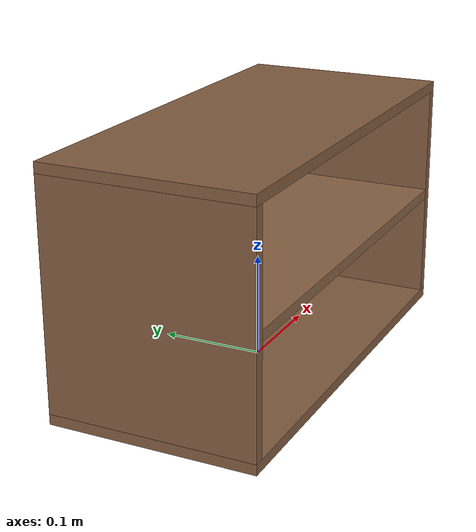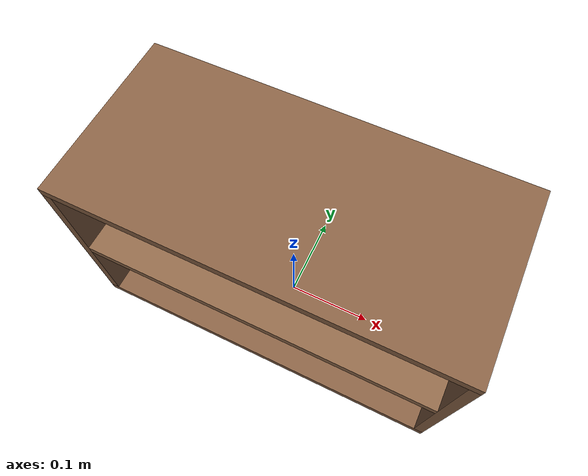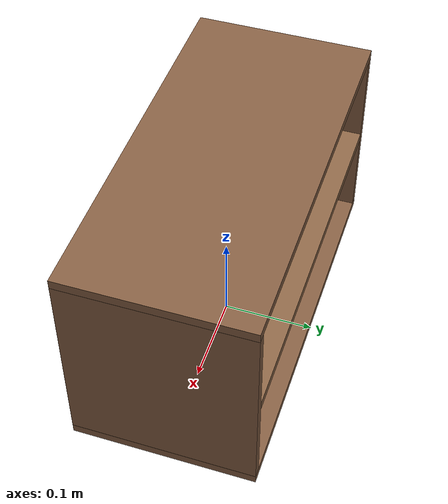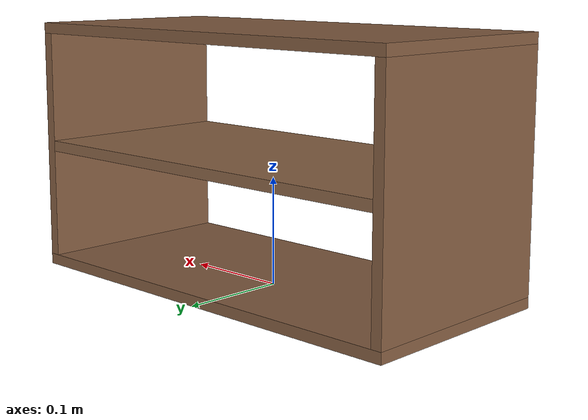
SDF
<?xml version="1.0"?>
<sdf version="1.9">
  <model name="furinno_shelf">
    <static>true</static>
    <link name="link">

      <collision name="base_col">
        <pose>0 0 0.005 0 0 0</pose>
        <geometry><box><size>0.417 0.198 0.010</size></box></geometry>
        <surface><contact><collide_bitmask>0x0001</collide_bitmask></contact></surface>
      </collision>
      <visual name="base_vis">
        <pose>0 0 0.005 0 0 0</pose>
        <geometry><box><size>0.417 0.198 0.010</size></box></geometry>
        <material>
          <ambient>0.42 0.30 0.20 1</ambient>
          <diffuse>0.52 0.37 0.26 1</diffuse>
          <specular>0.15 0.12 0.10 1</specular>
        </material>
      </visual>

      <collision name="top_col">
        <pose>0 0 0.231 0 0 0</pose>
        <geometry><box><size>0.417 0.198 0.010</size></box></geometry>
        <surface><contact><collide_bitmask>0x0001</collide_bitmask></contact></surface>
      </collision>
      <visual name="top_vis">
        <pose>0 0 0.231 0 0 0</pose>
        <geometry><box><size>0.417 0.198 0.010</size></box></geometry>
        <material>
          <ambient>0.42 0.30 0.20 1</ambient>
          <diffuse>0.52 0.37 0.26 1</diffuse>
          <specular>0.15 0.12 0.10 1</specular>
        </material>
      </visual>

      <collision name="side_l_col">
        <pose>-0.2035 0 0.118 0 0 0</pose>
        <geometry><box><size>0.010 0.198 0.216</size></box></geometry>
        <surface><contact><collide_bitmask>0x0001</collide_bitmask></contact></surface>
      </collision>
      <visual name="side_l_vis">
        <pose>-0.2035 0 0.118 0 0 0</pose>
        <geometry><box><size>0.010 0.198 0.216</size></box></geometry>
        <material>
          <ambient>0.42 0.30 0.20 1</ambient>
          <diffuse>0.52 0.37 0.26 1</diffuse>
          <specular>0.15 0.12 0.10 1</specular>
        </material>
      </visual>

      <collision name="side_r_col">
        <pose>0.2035 0 0.118 0 0 0</pose>
        <geometry><box><size>0.010 0.198 0.216</size></box></geometry>
        <surface><contact><collide_bitmask>0x0001</collide_bitmask></contact></surface>
      </collision>
      <visual name="side_r_vis">
        <pose>0.2035 0 0.118 0 0 0</pose>
        <geometry><box><size>0.010 0.198 0.216</size></box></geometry>
        <material>
          <ambient>0.42 0.30 0.20 1</ambient>
          <diffuse>0.52 0.37 0.26 1</diffuse>
          <specular>0.15 0.12 0.10 1</specular>
        </material>
      </visual>

      <collision name="shelf1_col">
        <pose>0 0 0.118 0 0 0</pose>
        <geometry><box><size>0.397 0.198 0.010</size></box></geometry>
        <surface><contact><collide_bitmask>0x0001</collide_bitmask></contact></surface>
      </collision>
      <visual name="shelf1_vis">
        <pose>0 0 0.118 0 0 0</pose>
        <geometry><box><size>0.397 0.198 0.010</size></box></geometry>
        <material>
          <ambient>0.45 0.32 0.22 1</ambient>
          <diffuse>0.55 0.40 0.28 1</diffuse>
          <specular>0.15 0.12 0.10 1</specular>
        </material>
      </visual>

    </link>
  </model>
</sdf>
